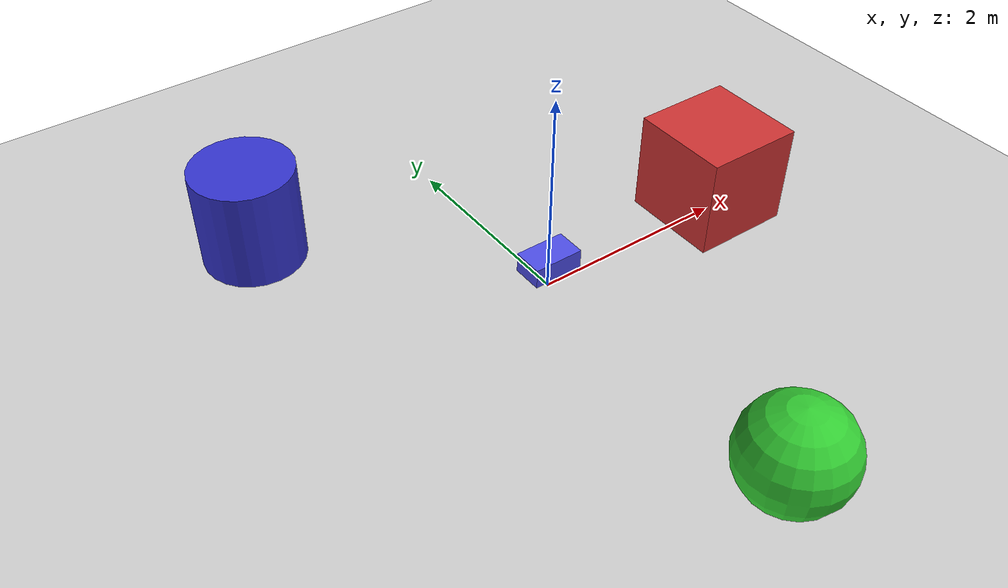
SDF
<?xml version="1.0" ?>
<sdf version="1.8">
  <world name="office_world">

    <scene>
      <ambient>0.4 0.4 0.4 1</ambient>
      <background>0.7 0.7 0.7 1</background>
      <shadows>true</shadows>
    </scene>

    <light type="directional" name="sun">
      <cast_shadows>true</cast_shadows>
      <pose>0 0 10 0 0 0</pose>
      <diffuse>0.8 0.8 0.8 1</diffuse>
      <specular>0.2 0.2 0.2 1</specular>
      <direction>-0.5 0.1 -0.9</direction>
    </light>

    <model name="ground_plane">
      <static>true</static>
      <link name="link">
        <collision name="collision">
          <geometry>
            <plane>
              <normal>0 0 1</normal>
              <size>100 100</size>
            </plane>
          </geometry>
        </collision>
        <visual name="visual">
          <geometry>
            <plane>
              <normal>0 0 1</normal>
              <size>100 100</size>
            </plane>
          </geometry>
          <material>
            <ambient>0.8 0.8 0.8 1</ambient>
            <diffuse>0.8 0.8 0.8 1</diffuse>
          </material>
        </visual>
      </link>
    </model>

    <model name="box1">
      <static>true</static>
      <pose>2 0 0.5 0 0 0</pose>
      <link name="link">
        <collision name="collision">
          <geometry>
            <box>
              <size>1 1 1</size>
            </box>
          </geometry>
        </collision>
        <visual name="visual">
          <geometry>
            <box>
              <size>1 1 1</size>
            </box>
          </geometry>
          <material>
            <ambient>0.8 0.2 0.2 1</ambient>
            <diffuse>0.8 0.2 0.2 1</diffuse>
          </material>
        </visual>
      </link>
    </model>

    <model name="cylinder1">
      <static>true</static>
      <pose>-2 2 0.5 0 0 0</pose>
      <link name="link">
        <collision name="collision">
          <geometry>
            <cylinder>
              <radius>0.5</radius>
              <length>1.0</length>
            </cylinder>
          </geometry>
        </collision>
        <visual name="visual">
          <geometry>
            <cylinder>
              <radius>0.5</radius>
              <length>1.0</length>
            </cylinder>
          </geometry>
          <material>
            <ambient>0.2 0.2 0.8 1</ambient>
            <diffuse>0.2 0.2 0.8 1</diffuse>
          </material>
        </visual>
      </link>
    </model>

    <model name="sphere1">
      <static>true</static>
      <pose>0 -3 0.5 0 0 0</pose>
      <link name="link">
        <collision name="collision">
          <geometry>
            <sphere>
              <radius>0.5</radius>
            </sphere>
          </geometry>
        </collision>
        <visual name="visual">
          <geometry>
            <sphere>
              <radius>0.5</radius>
            </sphere>
          </geometry>
          <material>
            <ambient>0.2 0.8 0.2 1</ambient>
            <diffuse>0.2 0.8 0.2 1</diffuse>
          </material>
        </visual>
      </link>
    </model>

    <model name="om1_robot">
      <pose>0 0 0.3 0 0 0</pose>
      <link name="base_link">
        <visual name="visual">
          <geometry>
            <box>
              <size>0.5 0.3 0.2</size>
            </box>
          </geometry>
          <material>
            <ambient>0.3 0.3 0.9 1</ambient>
            <diffuse>0.3 0.3 0.9 1</diffuse>
          </material>
        </visual>
        <collision name="collision">
          <geometry>
            <box>
              <size>0.5 0.3 0.2</size>
            </box>
          </geometry>
        </collision>
        <inertial>
          <mass>10</mass>
          <inertia>
            <ixx>0.1</ixx>
            <iyy>0.1</iyy>
            <izz>0.1</izz>
          </inertia>
        </inertial>
      </link>
    </model>

  </world>
</sdf>
